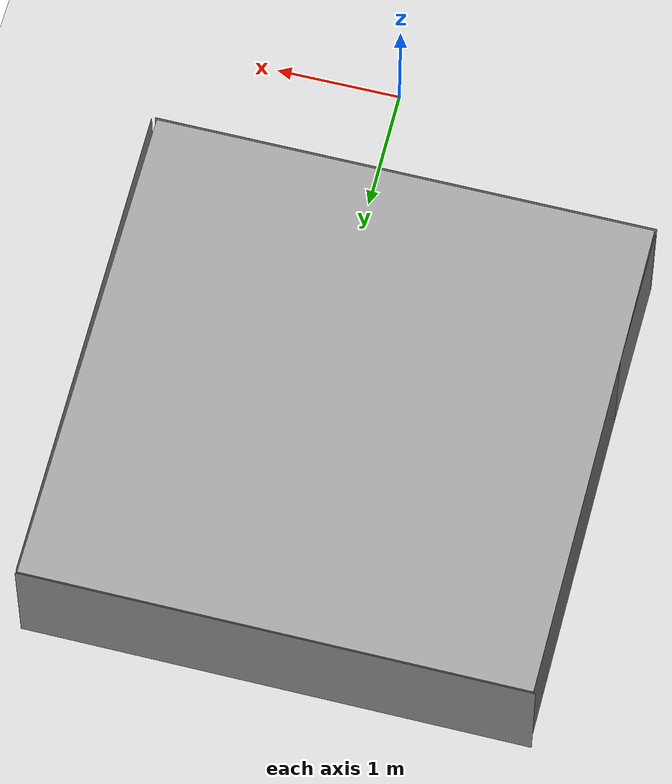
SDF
<sdf version="1.6">
 <world name="default">
  <light name="sun" type="directional">
   <pose>0 0 10 0 -0 0</pose>
   <diffuse>0.8 0.8 0.8 1</diffuse>
   <specular>0.1 0.1 0.1 1</specular>
   <attenuation>
    <range>1000</range>
    <constant>0.9</constant>
    <linear>0.01</linear>
    <quadratic>0.001</quadratic>
   </attenuation>
   <direction>-0.5 0.5 -1</direction>
  </light>
  <model name="ground_plane">
   <static>1</static>
   <link name="link">
    <collision name="collision">
     <geometry><plane><normal>0 0 1</normal><size>100 100</size></plane></geometry>
     <surface><friction><ode><mu>100</mu><mu2>50</mu2></ode></friction></surface>
    </collision>
    <visual name="visual">
     <cast_shadows>0</cast_shadows>
     <geometry><plane><normal>0 0 1</normal><size>100 100</size></plane></geometry>
     <material>
      <script><uri>file://media/materials/scripts/gazebo.material</uri><name>Gazebo/Grey</name></script>
     </material>
    </visual>
   </link>
  </model>
  <gravity>0 0 -9.8</gravity>
  <magnetic_field>6e-06 2.3e-05 -4.2e-05</magnetic_field>
  <atmosphere type="adiabatic"/>
  <physics name="default_physics" default="0" type="ode">
   <max_step_size>0.001</max_step_size>
   <real_time_factor>1</real_time_factor>
   <real_time_update_rate>1000</real_time_update_rate>
  </physics>
  <scene><ambient>0.4 0.4 0.4 1</ambient><background>0.7 0.7 0.7 1</background><shadows>1</shadows></scene>
  <spherical_coordinates>
   <surface_model>EARTH_WGS84</surface_model>
   <latitude_deg>0</latitude_deg>
   <longitude_deg>0</longitude_deg>
   <elevation>0</elevation>
   <heading_deg>0</heading_deg>
  </spherical_coordinates>
  <model name="final_model_wall">
   <link name="link_1">
    <pose>-0.006898 7.8e-05 -0.002202 0 -0 0</pose>
    <inertial>
     <mass>15.7396</mass>
     <inertia><ixx>22.1414</ixx><ixy>0</ixy><ixz>0</ixz><iyy>21.7726</iyy><iyz>0</iyz><izz>41.2907</izz></inertia>
    </inertial>
    <visual name="visual">
     <geometry><box><size>3.94963 3.98507 1</size></box></geometry>
     <material>
      <lighting>1</lighting>
      <script><uri>file://media/materials/scripts/gazebo.material</uri><name>Gazebo/Grey</name></script>
      <ambient>0.3 0.3 0.3 1</ambient>
      <diffuse>0.7 0.7 0.7 1</diffuse>
      <specular>0.01 0.01 0.01 1</specular>
      <emissive>0 0 0 1</emissive>
      <shader type="vertex"><normal_map>__default__</normal_map></shader>
     </material>
    </visual>
    <collision name="collision">
     <geometry><box><size>3.94963 3.98507 1</size></box></geometry>
     <surface>
      <friction>
       <ode><mu>1</mu><mu2>1</mu2><fdir1>0 0 0</fdir1><slip1>0</slip1><slip2>0</slip2></ode>
       <torsional>
        <coefficient>1</coefficient>
        <patch_radius>0</patch_radius>
        <surface_radius>0</surface_radius>
        <use_patch_radius>1</use_patch_radius>
        <ode><slip>0</slip></ode>
       </torsional>
      </friction>
      <bounce><restitution_coefficient>0</restitution_coefficient><threshold>1e+06</threshold></bounce>
      <contact>
       <collide_without_contact>0</collide_without_contact>
       <collide_without_contact_bitmask>1</collide_without_contact_bitmask>
       <collide_bitmask>1</collide_bitmask>
       <ode>
        <soft_cfm>0</soft_cfm>
        <soft_erp>0.2</soft_erp>
        <kp>1e+13</kp>
        <kd>1</kd>
        <max_vel>0.01</max_vel>
        <min_depth>0</min_depth>
       </ode>
       <bullet>
        <split_impulse>1</split_impulse>
        <split_impulse_penetration_threshold>-0.01</split_impulse_penetration_threshold>
        <soft_cfm>0</soft_cfm>
        <soft_erp>0.2</soft_erp>
        <kp>1e+13</kp>
        <kd>1</kd>
       </bullet>
      </contact>
     </surface>
    </collision>
   </link>
   <model name="wall1">
    <link name="link_0">
     <inertial>
      <mass>0.000270369</mass>
      <inertia>
       <ixx>2.25308e-05</ixx>
       <ixy>0</ixy>
       <ixz>0</ixz>
       <iyy>0.000379957</iyy>
       <iyz>0</iyz>
       <izz>0.000357427</izz>
      </inertia>
     </inertial>
     <visual name="visual">
      <geometry><box><size>3.98296 6.2e-05 1</size></box></geometry>
      <material>
       <lighting>1</lighting>
       <script>
        <uri>model://wall1/materials/scripts</uri>
        <uri>model://wall1/materials/textures</uri>
        <name>wall1/Diffuse</name>
       </script>
       <ambient>0.3 0.3 0.3 1</ambient>
       <diffuse>0.7 0.7 0.7 1</diffuse>
       <specular>0.01 0.01 0.01 1</specular>
       <emissive>0 0 0 1</emissive>
      </material>
     </visual>
     <collision name="collision">
      <geometry><box><size>3.98296 6.2e-05 1</size></box></geometry>
      <surface>
       <friction>
        <ode><mu>1</mu><mu2>1</mu2><fdir1>0 0 0</fdir1><slip1>0</slip1><slip2>0</slip2></ode>
        <torsional>
         <coefficient>1</coefficient>
         <patch_radius>0</patch_radius>
         <surface_radius>0</surface_radius>
         <use_patch_radius>1</use_patch_radius>
         <ode><slip>0</slip></ode>
        </torsional>
       </friction>
       <bounce><restitution_coefficient>0</restitution_coefficient><threshold>1e+06</threshold></bounce>
       <contact>
        <collide_without_contact>0</collide_without_contact>
        <collide_without_contact_bitmask>1</collide_without_contact_bitmask>
        <collide_bitmask>1</collide_bitmask>
        <ode>
         <soft_cfm>0</soft_cfm>
         <soft_erp>0.2</soft_erp>
         <kp>1e+13</kp>
         <kd>1</kd>
         <max_vel>0.01</max_vel>
         <min_depth>0</min_depth>
        </ode>
        <bullet>
         <split_impulse>1</split_impulse>
         <split_impulse_penetration_threshold>-0.01</split_impulse_penetration_threshold>
         <soft_cfm>0</soft_cfm>
         <soft_erp>0.2</soft_erp>
         <kp>1e+13</kp>
         <kd>1</kd>
        </bullet>
       </contact>
      </surface>
     </collision>
    </link>
    <static>0</static>
    <pose>-0.006898 -1.99992 0.014308 0 -0 0</pose>
   </model>
   <model name="wall1_0">
    <link name="link_0">
     <inertial>
      <mass>0.000270369</mass>
      <inertia>
       <ixx>2.25308e-05</ixx>
       <ixy>0</ixy>
       <ixz>0</ixz>
       <iyy>0.000379957</iyy>
       <iyz>0</iyz>
       <izz>0.000357427</izz>
      </inertia>
     </inertial>
     <visual name="visual">
      <geometry><box><size>3.98296 6.2e-05 1</size></box></geometry>
      <material>
       <lighting>1</lighting>
       <script>
        <uri>model://wall2/materials/scripts</uri>
        <uri>model://wall2/materials/textures</uri>
        <name>wall2/Diffuse</name>
       </script>
       <ambient>0.3 0.3 0.3 1</ambient>
       <diffuse>0.7 0.7 0.7 1</diffuse>
       <specular>0.01 0.01 0.01 1</specular>
       <emissive>0 0 0 1</emissive>
      </material>
     </visual>
     <collision name="collision">
      <geometry><box><size>3.98296 6.2e-05 1</size></box></geometry>
      <surface>
       <friction>
        <ode><mu>1</mu><mu2>1</mu2><fdir1>0 0 0</fdir1><slip1>0</slip1><slip2>0</slip2></ode>
        <torsional>
         <coefficient>1</coefficient>
         <patch_radius>0</patch_radius>
         <surface_radius>0</surface_radius>
         <use_patch_radius>1</use_patch_radius>
         <ode><slip>0</slip></ode>
        </torsional>
       </friction>
       <bounce><restitution_coefficient>0</restitution_coefficient><threshold>1e+06</threshold></bounce>
       <contact>
        <collide_without_contact>0</collide_without_contact>
        <collide_without_contact_bitmask>1</collide_without_contact_bitmask>
        <collide_bitmask>1</collide_bitmask>
        <ode>
         <soft_cfm>0</soft_cfm>
         <soft_erp>0.2</soft_erp>
         <kp>1e+13</kp>
         <kd>1</kd>
         <max_vel>0.01</max_vel>
         <min_depth>0</min_depth>
        </ode>
        <bullet>
         <split_impulse>1</split_impulse>
         <split_impulse_penetration_threshold>-0.01</split_impulse_penetration_threshold>
         <soft_cfm>0</soft_cfm>
         <soft_erp>0.2</soft_erp>
         <kp>1e+13</kp>
         <kd>1</kd>
        </bullet>
       </contact>
      </surface>
     </collision>
    </link>
    <static>0</static>
    <pose>-0.006898 2.00008 -0.012098 0 -0 0</pose>
   </model>
   <model name="wall1_1">
    <link name="link_0">
     <inertial>
      <mass>0.000270369</mass>
      <inertia>
       <ixx>2.25308e-05</ixx>
       <ixy>0</ixy>
       <ixz>0</ixz>
       <iyy>0.000379957</iyy>
       <iyz>0</iyz>
       <izz>0.000357427</izz>
      </inertia>
     </inertial>
     <visual name="visual">
      <geometry><box><size>3.98296 6.2e-05 1</size></box></geometry>
      <material>
       <lighting>1</lighting>
       <script>
        <uri>model://wall3/materials/scripts</uri>
        <uri>model://wall3/materials/textures</uri>
        <name>wall3/Diffuse</name>
       </script>
       <ambient>0.3 0.3 0.3 1</ambient>
       <diffuse>0.7 0.7 0.7 1</diffuse>
       <specular>0.01 0.01 0.01 1</specular>
       <emissive>0 0 0 1</emissive>
      </material>
     </visual>
     <collision name="collision">
      <geometry><box><size>3.98296 6.2e-05 1</size></box></geometry>
      <surface>
       <friction>
        <ode><mu>1</mu><mu2>1</mu2><fdir1>0 0 0</fdir1><slip1>0</slip1><slip2>0</slip2></ode>
        <torsional>
         <coefficient>1</coefficient>
         <patch_radius>0</patch_radius>
         <surface_radius>0</surface_radius>
         <use_patch_radius>1</use_patch_radius>
         <ode><slip>0</slip></ode>
        </torsional>
       </friction>
       <bounce><restitution_coefficient>0</restitution_coefficient><threshold>1e+06</threshold></bounce>
       <contact>
        <collide_without_contact>0</collide_without_contact>
        <collide_without_contact_bitmask>1</collide_without_contact_bitmask>
        <collide_bitmask>1</collide_bitmask>
        <ode>
         <soft_cfm>0</soft_cfm>
         <soft_erp>0.2</soft_erp>
         <kp>1e+13</kp>
         <kd>1</kd>
         <max_vel>0.01</max_vel>
         <min_depth>0</min_depth>
        </ode>
        <bullet>
         <split_impulse>1</split_impulse>
         <split_impulse_penetration_threshold>-0.01</split_impulse_penetration_threshold>
         <soft_cfm>0</soft_cfm>
         <soft_erp>0.2</soft_erp>
         <kp>1e+13</kp>
         <kd>1</kd>
        </bullet>
       </contact>
      </surface>
     </collision>
    </link>
    <static>0</static>
    <pose>1.9931 7.8e-05 0.014319 0 -0 1.57841</pose>
   </model>
   <model name="wall1_2">
    <link name="link_0">
     <inertial>
      <mass>0.000270369</mass>
      <inertia>
       <ixx>2.25308e-05</ixx>
       <ixy>0</ixy>
       <ixz>0</ixz>
       <iyy>0.000379957</iyy>
       <iyz>0</iyz>
       <izz>0.000357427</izz>
      </inertia>
     </inertial>
     <visual name="visual">
      <geometry><box><size>3.98296 6.2e-05 1</size></box></geometry>
      <material>
       <lighting>1</lighting>
       <script>
        <uri>model://wall5/materials/scripts</uri>
        <uri>model://wall5/materials/textures</uri>
        <name>wall5/Diffuse</name>
       </script>
       <ambient>0.3 0.3 0.3 1</ambient>
       <diffuse>0.7 0.7 0.7 1</diffuse>
       <specular>0.01 0.01 0.01 1</specular>
       <emissive>0 0 0 1</emissive>
      </material>
     </visual>
     <collision name="collision">
      <geometry><box><size>3.98296 6.2e-05 1</size></box></geometry>
      <surface>
       <friction>
        <ode><mu>1</mu><mu2>1</mu2><fdir1>0 0 0</fdir1><slip1>0</slip1><slip2>0</slip2></ode>
        <torsional>
         <coefficient>1</coefficient>
         <patch_radius>0</patch_radius>
         <surface_radius>0</surface_radius>
         <use_patch_radius>1</use_patch_radius>
         <ode><slip>0</slip></ode>
        </torsional>
       </friction>
       <bounce><restitution_coefficient>0</restitution_coefficient><threshold>1e+06</threshold></bounce>
       <contact>
        <collide_without_contact>0</collide_without_contact>
        <collide_without_contact_bitmask>1</collide_without_contact_bitmask>
        <collide_bitmask>1</collide_bitmask>
        <ode>
         <soft_cfm>0</soft_cfm>
         <soft_erp>0.2</soft_erp>
         <kp>1e+13</kp>
         <kd>1</kd>
         <max_vel>0.01</max_vel>
         <min_depth>0</min_depth>
        </ode>
        <bullet>
         <split_impulse>1</split_impulse>
         <split_impulse_penetration_threshold>-0.01</split_impulse_penetration_threshold>
         <soft_cfm>0</soft_cfm>
         <soft_erp>0.2</soft_erp>
         <kp>1e+13</kp>
         <kd>1</kd>
        </bullet>
       </contact>
      </surface>
     </collision>
    </link>
    <static>0</static>
    <pose>-1.97241 -0.000307 -0.014523 0 -0 1.55963</pose>
   </model>
   <static>0</static>
   <pose>-0.325136 3.20241 0.502202 0 -0 0</pose>
  </model>
 </world>
</sdf>
